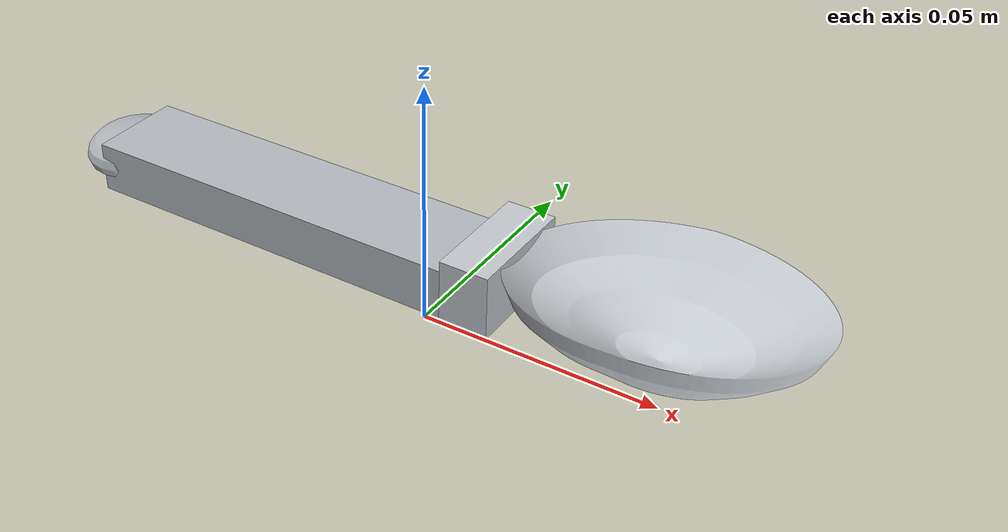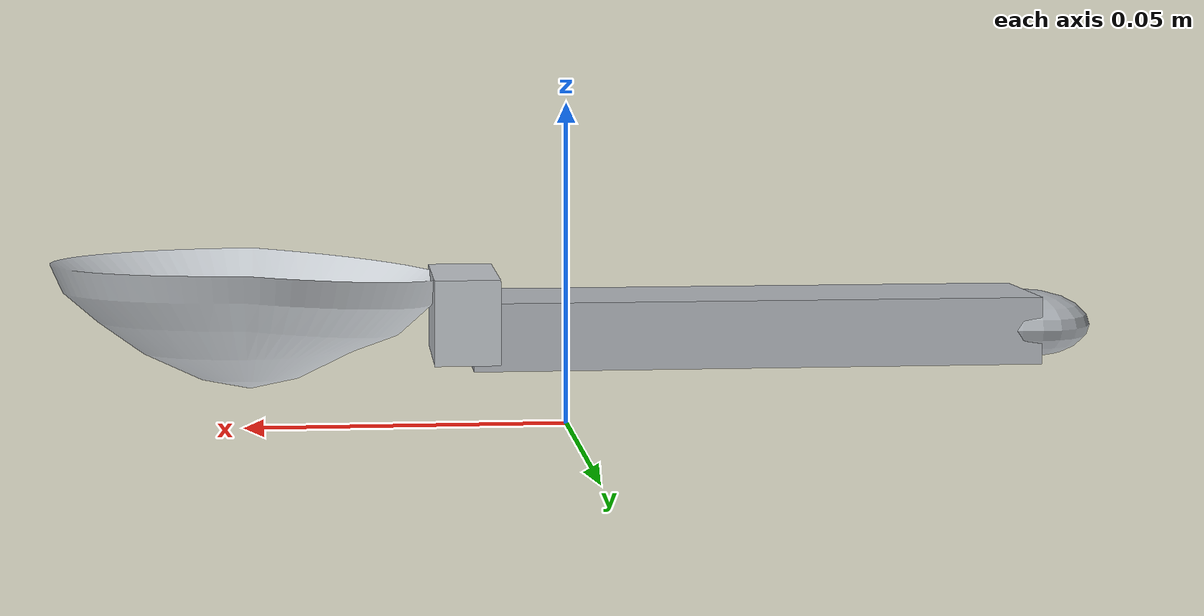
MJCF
<mujoco model="kitchen_spoon">
  <asset>
    <mesh name="spoon_bowl_concave_mesh" file="spoon_bowl_concave.obj"/>
  </asset>
  <worldbody>
    <body>
      <body name="object">
        <geom name="spoon_handle_collision" type="box"
              pos="-0.029 0 0.014" size="0.044 0.0115 0.007"
              rgba="0 0 0 0" density="700"
              friction="1.2 0.01 0.0001" group="0"/>
        <geom name="spoon_neck_collision" type="box"
              pos="0.018 0 0.014" size="0.012 0.013 0.007"
              rgba="0 0 0 0" density="700"
              friction="1.2 0.01 0.0001" group="0"/>
        <geom name="spoon_head_collision" type="ellipsoid"
              pos="0.047 0 0.016" size="0.030 0.021 0.0105"
              rgba="0 0 0 0" density="700"
              friction="1.2 0.01 0.0001" group="0"/>

        <geom name="spoon_handle_visual" type="box"
              pos="-0.029 0 0.015" size="0.044 0.0100 0.0052"
              rgba="0.70 0.72 0.74 1"
              contype="0" conaffinity="0" group="1"/>
        <geom name="spoon_handle_end_visual" type="ellipsoid"
              pos="-0.073 0 0.015" size="0.010 0.0110 0.0052"
              rgba="0.68 0.70 0.72 1"
              contype="0" conaffinity="0" group="1"/>
        <geom name="spoon_bolster_visual" type="box"
              pos="0.016 0 0.0175" size="0.005 0.0120 0.0065"
              rgba="0.76 0.78 0.80 1"
              contype="0" conaffinity="0" group="1"/>
        <geom name="spoon_bowl_concave_visual" type="mesh"
              mesh="spoon_bowl_concave_mesh"
              rgba="0.80 0.82 0.84 1"
              contype="0" conaffinity="0" group="1"/>
      </body>
      <site name="bottom_site" pos="0 0 0.006" size="0.003" rgba="0 0 0 0"/>
      <site name="top_site" pos="0 0 0.034" size="0.003" rgba="0 0 0 0"/>
      <site name="horizontal_radius_site" pos="0.060 0 0.015"
            size="0.003" rgba="0 0 0 0"/>
    </body>
  </worldbody>
</mujoco>
